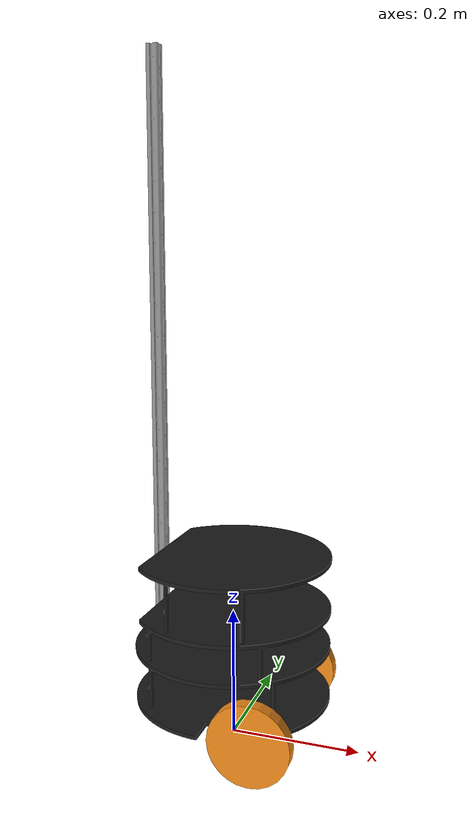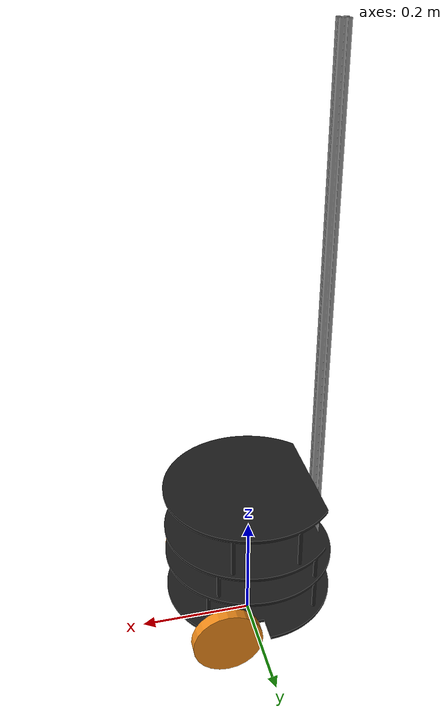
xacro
<?xml version="1.0"?>

<robot name="pi_robot" xmlns:xacro="http://ros.org/wiki/xacro">

   <!-- Define a number of dimensions using properties -->
   <property name="torso_offset_x" value="-0.13" />
   <property name="torso_offset_y" value="0.0" />
   <property name="torso_offset_z" value="0.088" />

   <!-- Include all component files -->
   <xacro:include filename="$(find rbx2_description)/urdf/materials.urdf.xacro" />
   <xacro:include filename="$(find rbx2_description)/urdf/pi_robot/pi_base.urdf.xacro" />
   <xacro:include filename="$(find rbx2_description)/urdf/pi_robot/pi_torso.urdf.xacro" />

   <!-- Add the base and wheels -->
   <base name="base" color="Black"/>

   <!-- Attach the torso -->
   <torso name="torso" parent="base" color="Grey">
      <origin xyz="${torso_offset_x} ${torso_offset_y} ${torso_offset_z}" rpy="0 0 0" />
   </torso>

</robot>

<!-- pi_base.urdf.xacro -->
<robot name="base" xmlns:xacro="http://ros.org/wiki/xacro">

  <!-- Define a number of dimensions using properties -->
  <property name="wheel_length" value="0.02032" />
  <property name="wheel_radius" value="0.06191" />
  <property name="wheel_offset_x" value="0.07" />
  <property name="wheel_offset_y" value="0.13" />
  <property name="wheel_offset_z" value="-0.0035" />

  <property name="base_radius" value="0.152" />
  <property name="base_height" value="0.241" />

  <property name="base_mesh_scale" value="0.0254" />

  <property name="PI" value="3.1415" />

  <!-- define a wheel -->
  <macro name="wheel" params="suffix parent reflect color">
    <joint name="${parent}_${suffix}_wheel_joint" type="continuous">
      <axis xyz="0 0 1" />
      <limit effort="100" velocity="100"/>
      <safety_controller k_velocity="10" />
      <origin xyz="${wheel_offset_x} ${reflect*wheel_offset_y} ${wheel_offset_z}" rpy="${reflect*1.57} 0 0" />
      <parent link="${parent}_link"/>
      <child link="${parent}_${suffix}_wheel_link"/>
    </joint>
    <link name="${parent}_${suffix}_wheel_link">
      <visual>
        <origin xyz="0 0 0" rpy="0 0 0" />
        <geometry>
          <cylinder radius="${wheel_radius}" length="${wheel_length}"/>
        </geometry>
        <material name="${color}" />
      </visual>
    </link>
  </macro>

  <!-- The base xacro macro -->
  <macro name="base" params="name color">
    <link name="${name}_link">
      <visual>
        <origin xyz="0 0 0" rpy="0 0 ${PI/2}" />
        <geometry>
           <mesh filename="package://rbx2_description/meshes/pi_robot/pi_robot_base.stl" scale="${base_mesh_scale} ${base_mesh_scale} ${base_mesh_scale}" />
        </geometry>
        <material name="${color}" />
      </visual>
      <collision>
        <origin xyz="0 0 ${base_height/2}" rpy="0 0 0" />
        <geometry>
           <cylinder radius="${base_radius}" length="${base_height}"/>
        </geometry>
      </collision>
    </link>
  </macro>

  <link name="base_footprint">
      <visual>
        <origin xyz="0 0 0" rpy="0 0 0" />
        <geometry>
          <box size="0.05 0.05 0.001" />
        </geometry>
        <material name="TransparentGreen" />
      </visual>
  </link>

  <joint name="base_joint" type="fixed">
    <origin xyz="0 0 ${wheel_radius - wheel_offset_z}" rpy="0 0 0" />
    <parent link="base_footprint"/>
    <child link="base_link" />
  </joint>

   <!-- Add the drive wheels -->
   <wheel parent="base" suffix="l" reflect="1" color="Orange"/>
   <wheel parent="base" suffix="r" reflect="-1" color="Orange"/>

</robot>

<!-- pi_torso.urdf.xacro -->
<robot name="torso" xmlns:xacro="http://ros.org/wiki/xacro">

  <!-- Define a number of dimensions using properties -->
  <property name="torso_size_x" value="0.025" />
  <property name="torso_size_y" value="0.025" />
  <property name="torso_size_z" value="0.885" />

  <property name="torso_mesh_scale" value="0.0127" />

  <!-- Define the torso -->
  <macro name="torso" params="parent name color *origin">
    <joint name="${parent}_${name}_joint" type="fixed">
      <xacro:insert_block name="origin" />
      <parent link="${parent}_link"/>
      <child link="${name}_link"/>
    </joint>
    <link name="${name}_link">
      <visual>
        <origin xyz="0 0 0" rpy="0 0 0" />
        <geometry>
           <mesh filename="package://rbx2_description/meshes/pi_robot/t_slot.stl" scale="${torso_mesh_scale} ${torso_mesh_scale} ${torso_mesh_scale}" />
        </geometry>
        <material name="${color}" />
      </visual>
      <collision>
        <origin xyz="0 0 ${torso_size_z/2}" rpy="0 0 0" />
        <geometry>
          <box size="${torso_size_x} ${torso_size_y} ${torso_size_z}" />
        </geometry>
      </collision>
    </link>
  </macro>

</robot>
